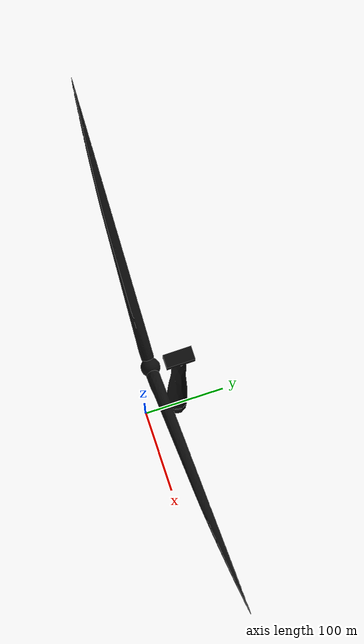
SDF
<sdf version="1.9">
 <world name="brb_turbine">
  <physics name="1ms" type="ignore">
   <max_step_size>0.001</max_step_size>
   <real_time_factor>1.0</real_time_factor>
  </physics>
  <plugin filename="gz-sim-physics-system" name="gz::sim::systems::Physics"/>
  <plugin filename="gz-sim-sensors-system" name="gz::sim::systems::Sensors">
   <render_engine>ogre2</render_engine>
  </plugin>
  <plugin filename="gz-sim-user-commands-system" name="gz::sim::systems::UserCommands"/>
  <plugin filename="gz-sim-scene-broadcaster-system" name="gz::sim::systems::SceneBroadcaster"/>
  <plugin filename="gz-sim-imu-system" name="gz::sim::systems::Imu"/>
  <plugin filename="gz-sim-navsat-system" name="gz::sim::systems::NavSat"/>
  <scene><ambient>1.0 1.0 1.0</ambient><background>0.8 0.8 0.8</background></scene>
  <spherical_coordinates>
   <latitude_deg>-35.363262</latitude_deg>
   <longitude_deg>149.165237</longitude_deg>
   <elevation>584</elevation>
   <heading_deg>0</heading_deg>
   <surface_model>EARTH_WGS84</surface_model>
  </spherical_coordinates>
  <light type="directional" name="sun">
   <pose>0 0 10 0 0 0</pose>
   <diffuse>0.8 0.8 0.8 1</diffuse>
   <specular>0.8 0.8 0.8 1</specular>
   <attenuation>
    <range>1000</range>
    <constant>0.9</constant>
    <linear>0.01</linear>
    <quadratic>0.001</quadratic>
   </attenuation>
   <direction>-0.5 0.1 -0.9</direction>
  </light>
  <model name="axes">
   <static>1</static>
   <link name="link">
    <visual name="r">
     <cast_shadows>0</cast_shadows>
     <pose>5 0 0.1 0 0 0</pose>
     <geometry><box><size>10 0.01 0.01</size></box></geometry>
     <material>
      <ambient>1 0 0 0.8</ambient>
      <diffuse>1 0 0 0.8</diffuse>
      <emissive>1 0 0 0.8</emissive>
      <specular>0.5 0.5 0.5 0.8</specular>
     </material>
    </visual>
    <visual name="g">
     <cast_shadows>0</cast_shadows>
     <pose>0 5 0.1 0 0 0</pose>
     <geometry><box><size>0.01 10 0.01</size></box></geometry>
     <material>
      <ambient>0 1 0 0.8</ambient>
      <diffuse>0 1 0 0.8</diffuse>
      <emissive>0 1 0 0.8</emissive>
      <specular>0.5 0.5 0.5 0.8</specular>
     </material>
    </visual>
    <visual name="b">
     <cast_shadows>0</cast_shadows>
     <pose>0 0 5.1 0 0 0</pose>
     <geometry><box><size>0.01 0.01 10</size></box></geometry>
     <material>
      <ambient>0 0 1 0.8</ambient>
      <diffuse>0 0 1 0.8</diffuse>
      <emissive>0 0 1 0.8</emissive>
      <specular>0.5 0.5 0.5 0.8</specular>
     </material>
    </visual>
    <sensor name="navsat_sensor" type="navsat"><always_on>1</always_on><update_rate>1</update_rate></sensor>
   </link>
  </model>
  <include><uri>model://turbine</uri><pose degrees="true">0 40 0 0 0 270</pose></include>
 </world>
</sdf>

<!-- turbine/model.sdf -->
<sdf version='1.9'>
  <model name='turbine'>
    <static>true</static>
    <pose>0 0 0 0 0 0</pose>
    <link name='base_link'>
      <visual name='base_visual'>
        <geometry>
          <mesh>
            <uri>model://turbine/meshes/turbine_vertical.stl</uri>
            <scale>.25 .25 .25</scale>
          </mesh>
        </geometry>
        <material>
          <ambient>0.05 0.05 0.05</ambient>
          <diffuse>0.05 0.05 0.05</diffuse>
          <specular>1 1 1 1</specular>
          <pbr>
            <metal>
              <metalness>0.5</metalness>
              <roughness>0.5</roughness>
            </metal>
          </pbr>
        </material>
      </visual>
    </link>
  </model>
</sdf>
